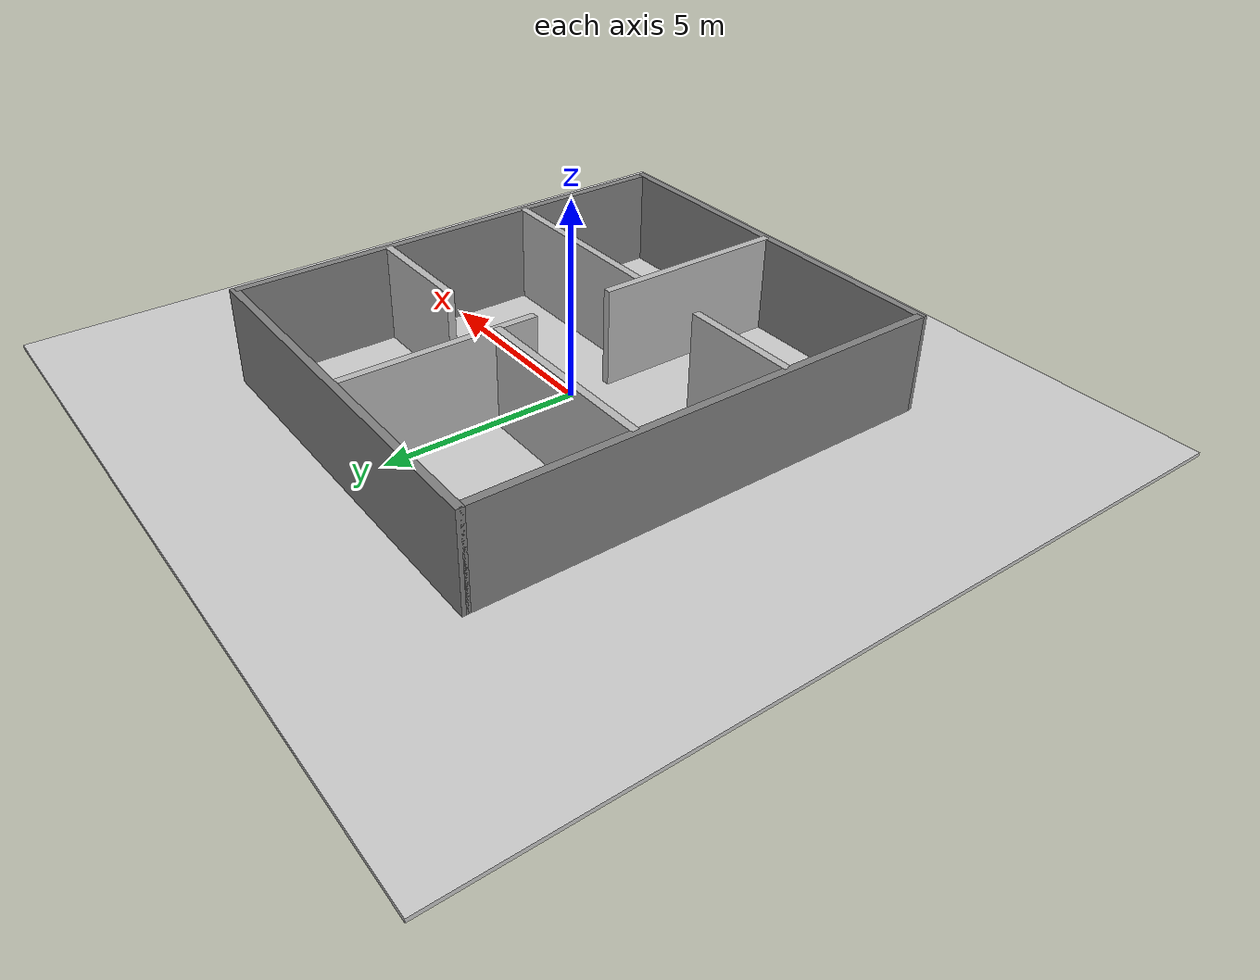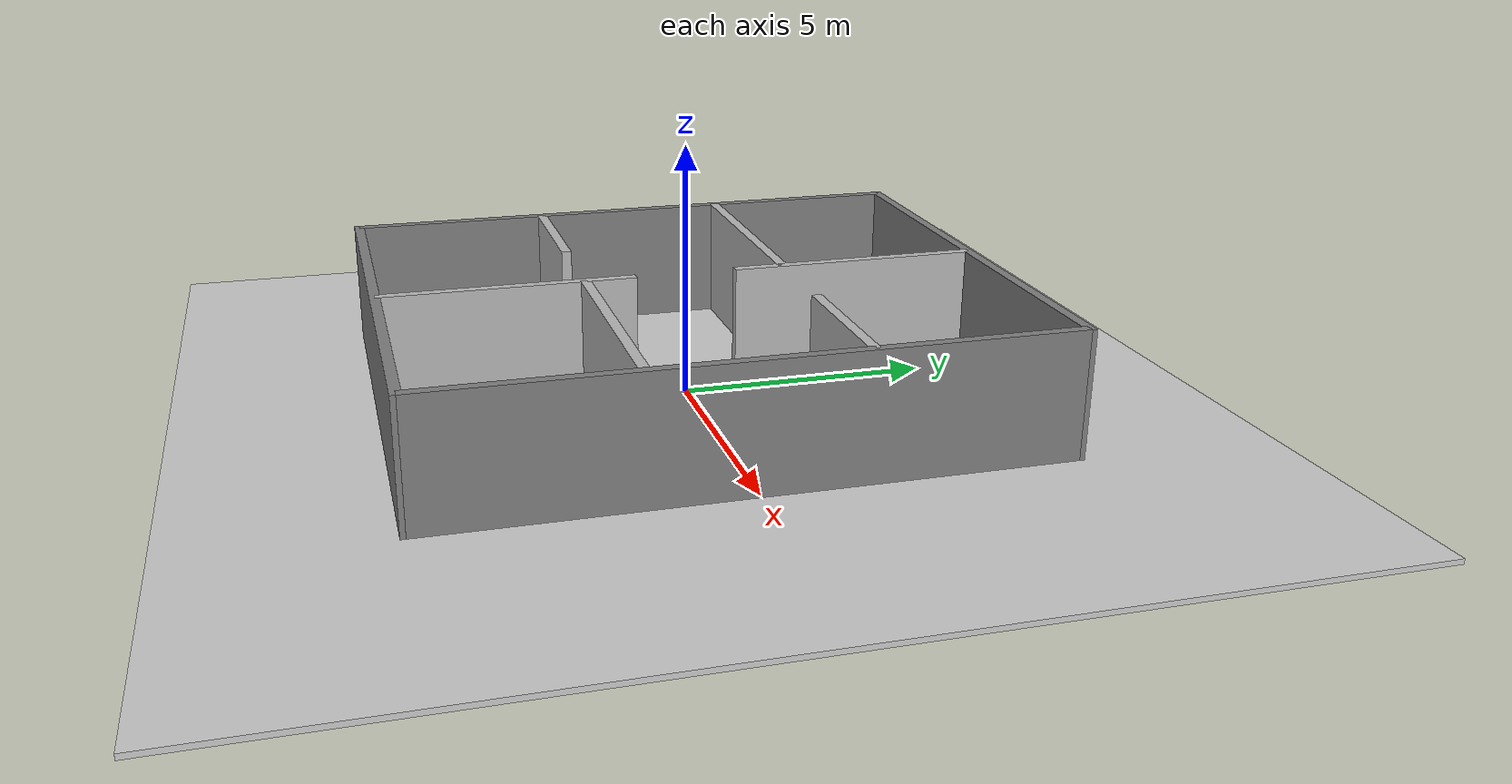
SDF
<?xml version="1.0"?>
<sdf version="1.8">
  <world name="three_rooms_world">
    <scene>
      <shadows>0</shadows>
    </scene>

    <gui fullscreen='0'>
      <camera name='user_camera'>
        <pose frame=''>0 0 9 0 1.5 0</pose>
        <view_controller>orbit</view_controller>
        <projection_type>perspective</projection_type>
      </camera>
    </gui>

    <physics type="ode">
      <real_time_update_rate>1000.0</real_time_update_rate>
      <max_step_size>0.001</max_step_size>
      <real_time_factor>1</real_time_factor>
      <ode>
        <solver>
          <type>quick</type>
          <iters>150</iters>
          <precon_iters>0</precon_iters>
          <sor>1.400000</sor>
          <use_dynamic_moi_rescaling>1</use_dynamic_moi_rescaling>
        </solver>
        <constraints>
          <cfm>0.00001</cfm>
          <erp>0.2</erp>
          <contact_max_correcting_vel>2000.000000</contact_max_correcting_vel>
          <contact_surface_layer>0.01000</contact_surface_layer>
        </constraints>
      </ode>
    </physics>

    <plugin
      filename="gz-sim-physics-system"
      name="gz::sim::systems::Physics">
    </plugin>
    <plugin
      filename="gz-sim-user-commands-system"
      name="gz::sim::systems::UserCommands">
    </plugin>
    <plugin
      filename="gz-sim-scene-broadcaster-system"
      name="gz::sim::systems::SceneBroadcaster">
    </plugin>
    <plugin
      filename="gz-sim-sensors-system"
      name="gz::sim::systems::Sensors">
      <render_engine>ogre2</render_engine>
    </plugin>
    <plugin
      filename="gz-sim-imu-system"
      name="gz::sim::systems::Imu">
    </plugin>

    <!-- Piso -->
    <model name="floor">
      <static>true</static>
      <link name="floor_link">
        <collision name="collision">
          <geometry>
            <box>
              <size>20 20 0.1</size>
            </box>
          </geometry>
          <pose>0 0 -0.05 0 0 0</pose>
        </collision>
        <visual name="visual">
          <geometry>
            <box>
              <size>20 20 0.1</size>
            </box>
          </geometry>
          <material>
            <ambient>0.8 0.8 0.8 1</ambient>
            <diffuse>0.8 0.8 0.8 1</diffuse>
          </material>
          <pose>0 0 -0.05 0 0 0</pose>
        </visual>
      </link>
    </model>

    <!-- Paredes -->
    <model name="three_rooms_structure">
      <static>true</static>
      <!-- Paredes exteriores -->
      <link name="wall_left">
        <pose>-5 0 1.25 0 0 0</pose>
        <collision name="collision">
          <geometry><box><size>0.2 12 2.5</size></box></geometry>
        </collision>
        <visual name="visual">
          <geometry><box><size>0.2 12 2.5</size></box></geometry>
          <material><ambient>0.5 0.5 0.5 1</ambient></material>
        </visual>
      </link>
      <link name="wall_right">
        <pose>5 0 1.25 0 0 0</pose>
        <collision name="collision">
          <geometry><box><size>0.2 12 2.5</size></box></geometry>
        </collision>
        <visual name="visual">
          <geometry><box><size>0.2 12 2.5</size></box></geometry>
          <material><ambient>0.5 0.5 0.5 1</ambient></material>
        </visual>
      </link>
      <link name="wall_top">
        <pose>0 6 1.25 0 0 0</pose>
        <collision name="collision">
          <geometry><box><size>10.2 0.2 2.5</size></box></geometry>
        </collision>
        <visual name="visual">
          <geometry><box><size>10.2 0.2 2.5</size></box></geometry>
          <material><ambient>0.5 0.5 0.5 1</ambient></material>
        </visual>
      </link>
      <link name="wall_bottom">
        <pose>0 -6 1.25 0 0 0</pose>
        <collision name="collision">
          <geometry><box><size>10.2 0.2 2.5</size></box></geometry>
        </collision>
        <visual name="visual">
          <geometry><box><size>10.2 0.2 2.5</size></box></geometry>
          <material><ambient>0.5 0.5 0.5 1</ambient></material>
        </visual>
      </link>
      <!-- Muros internos con puertas -->
      <link name="wall_1a">
        <pose>-2.5 2 1.25 0 0 0</pose>
        <collision name="collision">
          <geometry><box><size>5 0.2 2.5</size></box></geometry>
        </collision>
        <visual name="visual">
          <geometry><box><size>5 0.2 2.5</size></box></geometry>
        </visual>
      </link>
      <link name="wall_1b">
        <pose>3.5 2 1.25 0 0 0</pose>
        <collision name="collision">
          <geometry><box><size>3 0.2 2.5</size></box></geometry>
        </collision>
        <visual name="visual">
          <geometry><box><size>3 0.2 2.5</size></box></geometry>
        </visual>
      </link>
      <link name="wall_2a">
        <pose>-3.5 -2 1.25 0 0 0</pose>
        <collision name="collision">
          <geometry><box><size>3 0.2 2.5</size></box></geometry>
        </collision>
        <visual name="visual">
          <geometry><box><size>3 0.2 2.5</size></box></geometry>
        </visual>
      </link>
      <link name="wall_2b">
        <pose>2.5 -2 1.25 0 0 0</pose>
        <collision name="collision">
          <geometry><box><size>5 0.2 2.5</size></box></geometry>
        </collision>
        <visual name="visual">
          <geometry><box><size>5 0.2 2.5</size></box></geometry>
        </visual>
      </link>
      <link name="wall_vertical_top">
        <pose>0 3.5 1.25 0 0 0</pose>
        <collision name="collision">
          <geometry><box><size>0.2 5 2.5</size></box></geometry>
        </collision>
        <visual name="visual">
          <geometry><box><size>0.2 5 2.5</size></box></geometry>
        </visual>
      </link>
      <link name="wall_vertical_bottom">
        <pose>0 -3.5 1.25 0 0 0</pose>
        <collision name="collision">
          <geometry><box><size>0.2 5 2.5</size></box></geometry>
        </collision>
        <visual name="visual">
          <geometry><box><size>0.2 5 2.5</size></box></geometry>
        </visual>
      </link>
    </model>

    <!-- Luz -->
    <light name="light" type="point">
      <pose>0 0 5 0 0 0</pose>
      <diffuse>1 1 1 1</diffuse>
      <specular>0.1 0.1 0.1 1</specular>
      <attenuation>
        <range>20</range>
        <constant>0.9</constant>
        <linear>0.01</linear>
        <quadratic>0.001</quadratic>
      </attenuation>
    </light>

  </world>
</sdf>
